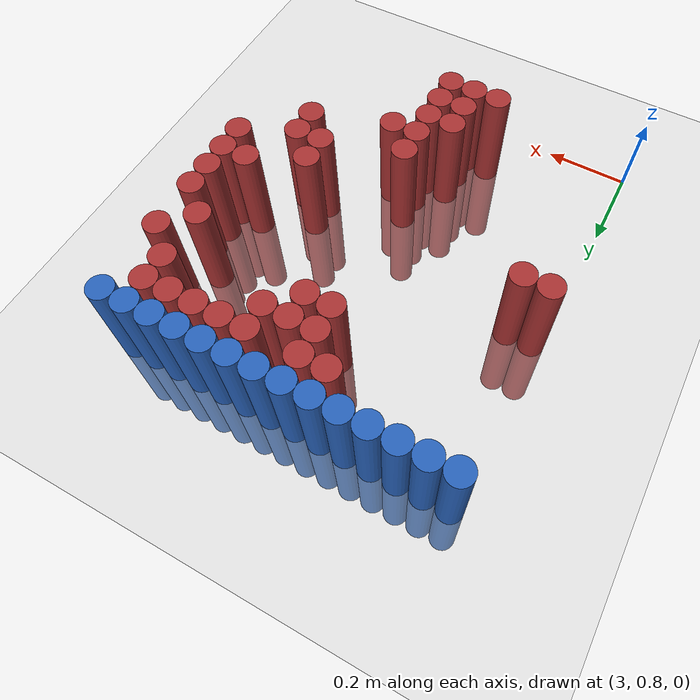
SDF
<sdf version="1.6">
 <world name="default">
  <model name="ground_plane">
   <static>1</static>
   <link name="link">
    <collision name="collision">
     <geometry><plane><normal>0 0 1</normal><size>100 100</size></plane></geometry>
     <surface><friction><ode><mu>100</mu><mu2>50</mu2></ode></friction></surface>
    </collision>
    <visual name="visual">
     <cast_shadows>0</cast_shadows>
     <geometry><plane><normal>0 0 1</normal><size>100 100</size></plane></geometry>
     <material>
      <script><uri>file://media/materials/scripts/gazebo.material</uri><name>Gazebo/Grey</name></script>
     </material>
    </visual>
   </link>
  </model>
  <model name="unit_cylinder_111">
   <static>1</static>
   <pose>3.030000 1.770000 0.000000 0.000000 0.000000 0.000000</pose>
   <link name="link">
    <inertial>
     <mass>1</mass>
     <inertia><ixx>0.145833</ixx><ixy>0</ixy><ixz>0</ixz><iyy>0.145833</iyy><iyz>0</iyz><izz>0.125</izz></inertia>
    </inertial>
    <collision name="collision">
     <geometry><cylinder><radius>0.030000</radius><length>0.5</length></cylinder></geometry>
    </collision>
    <visual name="visual">
     <geometry><cylinder><radius>0.030000</radius><length>0.5</length></cylinder></geometry>
     <material>
      <ambient>0.152000 0.379000 0.720000 1</ambient>
      <diffuse>0.152000 0.379000 0.720000 1</diffuse>
     </material>
     <material>
      <script><name>Gazebo/Grey</name><uri>file://media/materials/scripts/gazebo.material</uri></script>
     </material>
    </visual>
   </link>
  </model>
  <model name="unit_cylinder_112">
   <static>1</static>
   <pose>3.090000 1.770000 0.000000 0.000000 0.000000 0.000000</pose>
   <link name="link">
    <inertial>
     <mass>1</mass>
     <inertia><ixx>0.145833</ixx><ixy>0</ixy><ixz>0</ixz><iyy>0.145833</iyy><iyz>0</iyz><izz>0.125</izz></inertia>
    </inertial>
    <collision name="collision">
     <geometry><cylinder><radius>0.030000</radius><length>0.5</length></cylinder></geometry>
    </collision>
    <visual name="visual">
     <geometry><cylinder><radius>0.030000</radius><length>0.5</length></cylinder></geometry>
     <material>
      <ambient>0.152000 0.379000 0.720000 1</ambient>
      <diffuse>0.152000 0.379000 0.720000 1</diffuse>
     </material>
     <material>
      <script><name>Gazebo/Grey</name><uri>file://media/materials/scripts/gazebo.material</uri></script>
     </material>
    </visual>
   </link>
  </model>
  <model name="unit_cylinder_113">
   <static>1</static>
   <pose>3.150000 1.770000 0.000000 0.000000 0.000000 0.000000</pose>
   <link name="link">
    <inertial>
     <mass>1</mass>
     <inertia><ixx>0.145833</ixx><ixy>0</ixy><ixz>0</ixz><iyy>0.145833</iyy><iyz>0</iyz><izz>0.125</izz></inertia>
    </inertial>
    <collision name="collision">
     <geometry><cylinder><radius>0.030000</radius><length>0.5</length></cylinder></geometry>
    </collision>
    <visual name="visual">
     <geometry><cylinder><radius>0.030000</radius><length>0.5</length></cylinder></geometry>
     <material>
      <ambient>0.152000 0.379000 0.720000 1</ambient>
      <diffuse>0.152000 0.379000 0.720000 1</diffuse>
     </material>
     <material>
      <script><name>Gazebo/Grey</name><uri>file://media/materials/scripts/gazebo.material</uri></script>
     </material>
    </visual>
   </link>
  </model>
  <model name="unit_cylinder_114">
   <static>1</static>
   <pose>3.210000 1.770000 0.000000 0.000000 0.000000 0.000000</pose>
   <link name="link">
    <inertial>
     <mass>1</mass>
     <inertia><ixx>0.145833</ixx><ixy>0</ixy><ixz>0</ixz><iyy>0.145833</iyy><iyz>0</iyz><izz>0.125</izz></inertia>
    </inertial>
    <collision name="collision">
     <geometry><cylinder><radius>0.030000</radius><length>0.5</length></cylinder></geometry>
    </collision>
    <visual name="visual">
     <geometry><cylinder><radius>0.030000</radius><length>0.5</length></cylinder></geometry>
     <material>
      <ambient>0.152000 0.379000 0.720000 1</ambient>
      <diffuse>0.152000 0.379000 0.720000 1</diffuse>
     </material>
     <material>
      <script><name>Gazebo/Grey</name><uri>file://media/materials/scripts/gazebo.material</uri></script>
     </material>
    </visual>
   </link>
  </model>
  <model name="unit_cylinder_115">
   <static>1</static>
   <pose>3.270000 1.770000 0.000000 0.000000 0.000000 0.000000</pose>
   <link name="link">
    <inertial>
     <mass>1</mass>
     <inertia><ixx>0.145833</ixx><ixy>0</ixy><ixz>0</ixz><iyy>0.145833</iyy><iyz>0</iyz><izz>0.125</izz></inertia>
    </inertial>
    <collision name="collision">
     <geometry><cylinder><radius>0.030000</radius><length>0.5</length></cylinder></geometry>
    </collision>
    <visual name="visual">
     <geometry><cylinder><radius>0.030000</radius><length>0.5</length></cylinder></geometry>
     <material>
      <ambient>0.152000 0.379000 0.720000 1</ambient>
      <diffuse>0.152000 0.379000 0.720000 1</diffuse>
     </material>
     <material>
      <script><name>Gazebo/Grey</name><uri>file://media/materials/scripts/gazebo.material</uri></script>
     </material>
    </visual>
   </link>
  </model>
  <model name="unit_cylinder_116">
   <static>1</static>
   <pose>3.330000 1.770000 0.000000 0.000000 0.000000 0.000000</pose>
   <link name="link">
    <inertial>
     <mass>1</mass>
     <inertia><ixx>0.145833</ixx><ixy>0</ixy><ixz>0</ixz><iyy>0.145833</iyy><iyz>0</iyz><izz>0.125</izz></inertia>
    </inertial>
    <collision name="collision">
     <geometry><cylinder><radius>0.030000</radius><length>0.5</length></cylinder></geometry>
    </collision>
    <visual name="visual">
     <geometry><cylinder><radius>0.030000</radius><length>0.5</length></cylinder></geometry>
     <material>
      <ambient>0.152000 0.379000 0.720000 1</ambient>
      <diffuse>0.152000 0.379000 0.720000 1</diffuse>
     </material>
     <material>
      <script><name>Gazebo/Grey</name><uri>file://media/materials/scripts/gazebo.material</uri></script>
     </material>
    </visual>
   </link>
  </model>
  <model name="unit_cylinder_117">
   <static>1</static>
   <pose>3.390000 1.770000 0.000000 0.000000 0.000000 0.000000</pose>
   <link name="link">
    <inertial>
     <mass>1</mass>
     <inertia><ixx>0.145833</ixx><ixy>0</ixy><ixz>0</ixz><iyy>0.145833</iyy><iyz>0</iyz><izz>0.125</izz></inertia>
    </inertial>
    <collision name="collision">
     <geometry><cylinder><radius>0.030000</radius><length>0.5</length></cylinder></geometry>
    </collision>
    <visual name="visual">
     <geometry><cylinder><radius>0.030000</radius><length>0.5</length></cylinder></geometry>
     <material>
      <ambient>0.152000 0.379000 0.720000 1</ambient>
      <diffuse>0.152000 0.379000 0.720000 1</diffuse>
     </material>
     <material>
      <script><name>Gazebo/Grey</name><uri>file://media/materials/scripts/gazebo.material</uri></script>
     </material>
    </visual>
   </link>
  </model>
  <model name="unit_cylinder_118">
   <static>1</static>
   <pose>3.450000 1.770000 0.000000 0.000000 0.000000 0.000000</pose>
   <link name="link">
    <inertial>
     <mass>1</mass>
     <inertia><ixx>0.145833</ixx><ixy>0</ixy><ixz>0</ixz><iyy>0.145833</iyy><iyz>0</iyz><izz>0.125</izz></inertia>
    </inertial>
    <collision name="collision">
     <geometry><cylinder><radius>0.030000</radius><length>0.5</length></cylinder></geometry>
    </collision>
    <visual name="visual">
     <geometry><cylinder><radius>0.030000</radius><length>0.5</length></cylinder></geometry>
     <material>
      <ambient>0.152000 0.379000 0.720000 1</ambient>
      <diffuse>0.152000 0.379000 0.720000 1</diffuse>
     </material>
     <material>
      <script><name>Gazebo/Grey</name><uri>file://media/materials/scripts/gazebo.material</uri></script>
     </material>
    </visual>
   </link>
  </model>
  <model name="unit_cylinder_119">
   <static>1</static>
   <pose>3.510000 1.770000 0.000000 0.000000 0.000000 0.000000</pose>
   <link name="link">
    <inertial>
     <mass>1</mass>
     <inertia><ixx>0.145833</ixx><ixy>0</ixy><ixz>0</ixz><iyy>0.145833</iyy><iyz>0</iyz><izz>0.125</izz></inertia>
    </inertial>
    <collision name="collision">
     <geometry><cylinder><radius>0.030000</radius><length>0.5</length></cylinder></geometry>
    </collision>
    <visual name="visual">
     <geometry><cylinder><radius>0.030000</radius><length>0.5</length></cylinder></geometry>
     <material>
      <ambient>0.152000 0.379000 0.720000 1</ambient>
      <diffuse>0.152000 0.379000 0.720000 1</diffuse>
     </material>
     <material>
      <script><name>Gazebo/Grey</name><uri>file://media/materials/scripts/gazebo.material</uri></script>
     </material>
    </visual>
   </link>
  </model>
  <model name="unit_cylinder_120">
   <static>1</static>
   <pose>3.570000 1.770000 0.000000 0.000000 0.000000 0.000000</pose>
   <link name="link">
    <inertial>
     <mass>1</mass>
     <inertia><ixx>0.145833</ixx><ixy>0</ixy><ixz>0</ixz><iyy>0.145833</iyy><iyz>0</iyz><izz>0.125</izz></inertia>
    </inertial>
    <collision name="collision">
     <geometry><cylinder><radius>0.030000</radius><length>0.5</length></cylinder></geometry>
    </collision>
    <visual name="visual">
     <geometry><cylinder><radius>0.030000</radius><length>0.5</length></cylinder></geometry>
     <material>
      <ambient>0.152000 0.379000 0.720000 1</ambient>
      <diffuse>0.152000 0.379000 0.720000 1</diffuse>
     </material>
     <material>
      <script><name>Gazebo/Grey</name><uri>file://media/materials/scripts/gazebo.material</uri></script>
     </material>
    </visual>
   </link>
  </model>
  <model name="unit_cylinder_121">
   <static>1</static>
   <pose>3.630000 1.770000 0.000000 0.000000 0.000000 0.000000</pose>
   <link name="link">
    <inertial>
     <mass>1</mass>
     <inertia><ixx>0.145833</ixx><ixy>0</ixy><ixz>0</ixz><iyy>0.145833</iyy><iyz>0</iyz><izz>0.125</izz></inertia>
    </inertial>
    <collision name="collision">
     <geometry><cylinder><radius>0.030000</radius><length>0.5</length></cylinder></geometry>
    </collision>
    <visual name="visual">
     <geometry><cylinder><radius>0.030000</radius><length>0.5</length></cylinder></geometry>
     <material>
      <ambient>0.152000 0.379000 0.720000 1</ambient>
      <diffuse>0.152000 0.379000 0.720000 1</diffuse>
     </material>
     <material>
      <script><name>Gazebo/Grey</name><uri>file://media/materials/scripts/gazebo.material</uri></script>
     </material>
    </visual>
   </link>
  </model>
  <model name="unit_cylinder_122">
   <static>1</static>
   <pose>3.690000 1.770000 0.000000 0.000000 0.000000 0.000000</pose>
   <link name="link">
    <inertial>
     <mass>1</mass>
     <inertia><ixx>0.145833</ixx><ixy>0</ixy><ixz>0</ixz><iyy>0.145833</iyy><iyz>0</iyz><izz>0.125</izz></inertia>
    </inertial>
    <collision name="collision">
     <geometry><cylinder><radius>0.030000</radius><length>0.5</length></cylinder></geometry>
    </collision>
    <visual name="visual">
     <geometry><cylinder><radius>0.030000</radius><length>0.5</length></cylinder></geometry>
     <material>
      <ambient>0.152000 0.379000 0.720000 1</ambient>
      <diffuse>0.152000 0.379000 0.720000 1</diffuse>
     </material>
     <material>
      <script><name>Gazebo/Grey</name><uri>file://media/materials/scripts/gazebo.material</uri></script>
     </material>
    </visual>
   </link>
  </model>
  <model name="unit_cylinder_123">
   <static>1</static>
   <pose>3.750000 1.770000 0.000000 0.000000 0.000000 0.000000</pose>
   <link name="link">
    <inertial>
     <mass>1</mass>
     <inertia><ixx>0.145833</ixx><ixy>0</ixy><ixz>0</ixz><iyy>0.145833</iyy><iyz>0</iyz><izz>0.125</izz></inertia>
    </inertial>
    <collision name="collision">
     <geometry><cylinder><radius>0.030000</radius><length>0.5</length></cylinder></geometry>
    </collision>
    <visual name="visual">
     <geometry><cylinder><radius>0.030000</radius><length>0.5</length></cylinder></geometry>
     <material>
      <ambient>0.152000 0.379000 0.720000 1</ambient>
      <diffuse>0.152000 0.379000 0.720000 1</diffuse>
     </material>
     <material>
      <script><name>Gazebo/Grey</name><uri>file://media/materials/scripts/gazebo.material</uri></script>
     </material>
    </visual>
   </link>
  </model>
  <model name="unit_cylinder_124">
   <static>1</static>
   <pose>3.810000 1.770000 0.000000 0.000000 0.000000 0.000000</pose>
   <link name="link">
    <inertial>
     <mass>1</mass>
     <inertia><ixx>0.145833</ixx><ixy>0</ixy><ixz>0</ixz><iyy>0.145833</iyy><iyz>0</iyz><izz>0.125</izz></inertia>
    </inertial>
    <collision name="collision">
     <geometry><cylinder><radius>0.030000</radius><length>0.5</length></cylinder></geometry>
    </collision>
    <visual name="visual">
     <geometry><cylinder><radius>0.030000</radius><length>0.5</length></cylinder></geometry>
     <material>
      <ambient>0.152000 0.379000 0.720000 1</ambient>
      <diffuse>0.152000 0.379000 0.720000 1</diffuse>
     </material>
     <material>
      <script><name>Gazebo/Grey</name><uri>file://media/materials/scripts/gazebo.material</uri></script>
     </material>
    </visual>
   </link>
  </model>
  <model name="unit_cylinder_132">
   <static>1</static>
   <pose>3.330000 1.710000 0.000000 0.000000 0.000000 0.000000</pose>
   <link name="link">
    <inertial>
     <mass>1</mass>
     <inertia><ixx>0.145833</ixx><ixy>0</ixy><ixz>0</ixz><iyy>0.145833</iyy><iyz>0</iyz><izz>0.125</izz></inertia>
    </inertial>
    <collision name="collision">
     <geometry><cylinder><radius>0.030000</radius><length>0.5</length></cylinder></geometry>
    </collision>
    <visual name="visual">
     <geometry><cylinder><radius>0.030000</radius><length>0.5</length></cylinder></geometry>
     <material>
      <ambient>0.648000 0.192000 0.192000 1</ambient>
      <diffuse>0.648000 0.192000 0.192000 1</diffuse>
     </material>
     <material>
      <script><name>Gazebo/Grey</name><uri>file://media/materials/scripts/gazebo.material</uri></script>
     </material>
    </visual>
   </link>
  </model>
  <model name="unit_cylinder_133">
   <static>1</static>
   <pose>3.390000 1.710000 0.000000 0.000000 0.000000 0.000000</pose>
   <link name="link">
    <inertial>
     <mass>1</mass>
     <inertia><ixx>0.145833</ixx><ixy>0</ixy><ixz>0</ixz><iyy>0.145833</iyy><iyz>0</iyz><izz>0.125</izz></inertia>
    </inertial>
    <collision name="collision">
     <geometry><cylinder><radius>0.030000</radius><length>0.5</length></cylinder></geometry>
    </collision>
    <visual name="visual">
     <geometry><cylinder><radius>0.030000</radius><length>0.5</length></cylinder></geometry>
     <material>
      <ambient>0.648000 0.192000 0.192000 1</ambient>
      <diffuse>0.648000 0.192000 0.192000 1</diffuse>
     </material>
     <material>
      <script><name>Gazebo/Grey</name><uri>file://media/materials/scripts/gazebo.material</uri></script>
     </material>
    </visual>
   </link>
  </model>
  <model name="unit_cylinder_134">
   <static>1</static>
   <pose>3.510000 1.710000 0.000000 0.000000 0.000000 0.000000</pose>
   <link name="link">
    <inertial>
     <mass>1</mass>
     <inertia><ixx>0.145833</ixx><ixy>0</ixy><ixz>0</ixz><iyy>0.145833</iyy><iyz>0</iyz><izz>0.125</izz></inertia>
    </inertial>
    <collision name="collision">
     <geometry><cylinder><radius>0.030000</radius><length>0.5</length></cylinder></geometry>
    </collision>
    <visual name="visual">
     <geometry><cylinder><radius>0.030000</radius><length>0.5</length></cylinder></geometry>
     <material>
      <ambient>0.648000 0.192000 0.192000 1</ambient>
      <diffuse>0.648000 0.192000 0.192000 1</diffuse>
     </material>
     <material>
      <script><name>Gazebo/Grey</name><uri>file://media/materials/scripts/gazebo.material</uri></script>
     </material>
    </visual>
   </link>
  </model>
  <model name="unit_cylinder_135">
   <static>1</static>
   <pose>3.570000 1.710000 0.000000 0.000000 0.000000 0.000000</pose>
   <link name="link">
    <inertial>
     <mass>1</mass>
     <inertia><ixx>0.145833</ixx><ixy>0</ixy><ixz>0</ixz><iyy>0.145833</iyy><iyz>0</iyz><izz>0.125</izz></inertia>
    </inertial>
    <collision name="collision">
     <geometry><cylinder><radius>0.030000</radius><length>0.5</length></cylinder></geometry>
    </collision>
    <visual name="visual">
     <geometry><cylinder><radius>0.030000</radius><length>0.5</length></cylinder></geometry>
     <material>
      <ambient>0.648000 0.192000 0.192000 1</ambient>
      <diffuse>0.648000 0.192000 0.192000 1</diffuse>
     </material>
     <material>
      <script><name>Gazebo/Grey</name><uri>file://media/materials/scripts/gazebo.material</uri></script>
     </material>
    </visual>
   </link>
  </model>
  <model name="unit_cylinder_136">
   <static>1</static>
   <pose>3.630000 1.710000 0.000000 0.000000 0.000000 0.000000</pose>
   <link name="link">
    <inertial>
     <mass>1</mass>
     <inertia><ixx>0.145833</ixx><ixy>0</ixy><ixz>0</ixz><iyy>0.145833</iyy><iyz>0</iyz><izz>0.125</izz></inertia>
    </inertial>
    <collision name="collision">
     <geometry><cylinder><radius>0.030000</radius><length>0.5</length></cylinder></geometry>
    </collision>
    <visual name="visual">
     <geometry><cylinder><radius>0.030000</radius><length>0.5</length></cylinder></geometry>
     <material>
      <ambient>0.648000 0.192000 0.192000 1</ambient>
      <diffuse>0.648000 0.192000 0.192000 1</diffuse>
     </material>
     <material>
      <script><name>Gazebo/Grey</name><uri>file://media/materials/scripts/gazebo.material</uri></script>
     </material>
    </visual>
   </link>
  </model>
  <model name="unit_cylinder_137">
   <static>1</static>
   <pose>3.690000 1.710000 0.000000 0.000000 0.000000 0.000000</pose>
   <link name="link">
    <inertial>
     <mass>1</mass>
     <inertia><ixx>0.145833</ixx><ixy>0</ixy><ixz>0</ixz><iyy>0.145833</iyy><iyz>0</iyz><izz>0.125</izz></inertia>
    </inertial>
    <collision name="collision">
     <geometry><cylinder><radius>0.030000</radius><length>0.5</length></cylinder></geometry>
    </collision>
    <visual name="visual">
     <geometry><cylinder><radius>0.030000</radius><length>0.5</length></cylinder></geometry>
     <material>
      <ambient>0.648000 0.192000 0.192000 1</ambient>
      <diffuse>0.648000 0.192000 0.192000 1</diffuse>
     </material>
     <material>
      <script><name>Gazebo/Grey</name><uri>file://media/materials/scripts/gazebo.material</uri></script>
     </material>
    </visual>
   </link>
  </model>
  <model name="unit_cylinder_138">
   <static>1</static>
   <pose>3.750000 1.710000 0.000000 0.000000 0.000000 0.000000</pose>
   <link name="link">
    <inertial>
     <mass>1</mass>
     <inertia><ixx>0.145833</ixx><ixy>0</ixy><ixz>0</ixz><iyy>0.145833</iyy><iyz>0</iyz><izz>0.125</izz></inertia>
    </inertial>
    <collision name="collision">
     <geometry><cylinder><radius>0.030000</radius><length>0.5</length></cylinder></geometry>
    </collision>
    <visual name="visual">
     <geometry><cylinder><radius>0.030000</radius><length>0.5</length></cylinder></geometry>
     <material>
      <ambient>0.648000 0.192000 0.192000 1</ambient>
      <diffuse>0.648000 0.192000 0.192000 1</diffuse>
     </material>
     <material>
      <script><name>Gazebo/Grey</name><uri>file://media/materials/scripts/gazebo.material</uri></script>
     </material>
    </visual>
   </link>
  </model>
  <model name="unit_cylinder_146">
   <static>1</static>
   <pose>3.390000 1.650000 0.000000 0.000000 0.000000 0.000000</pose>
   <link name="link">
    <inertial>
     <mass>1</mass>
     <inertia><ixx>0.145833</ixx><ixy>0</ixy><ixz>0</ixz><iyy>0.145833</iyy><iyz>0</iyz><izz>0.125</izz></inertia>
    </inertial>
    <collision name="collision">
     <geometry><cylinder><radius>0.030000</radius><length>0.5</length></cylinder></geometry>
    </collision>
    <visual name="visual">
     <geometry><cylinder><radius>0.030000</radius><length>0.5</length></cylinder></geometry>
     <material>
      <ambient>0.648000 0.192000 0.192000 1</ambient>
      <diffuse>0.648000 0.192000 0.192000 1</diffuse>
     </material>
     <material>
      <script><name>Gazebo/Grey</name><uri>file://media/materials/scripts/gazebo.material</uri></script>
     </material>
    </visual>
   </link>
  </model>
  <model name="unit_cylinder_147">
   <static>1</static>
   <pose>3.450000 1.650000 0.000000 0.000000 0.000000 0.000000</pose>
   <link name="link">
    <inertial>
     <mass>1</mass>
     <inertia><ixx>0.145833</ixx><ixy>0</ixy><ixz>0</ixz><iyy>0.145833</iyy><iyz>0</iyz><izz>0.125</izz></inertia>
    </inertial>
    <collision name="collision">
     <geometry><cylinder><radius>0.030000</radius><length>0.5</length></cylinder></geometry>
    </collision>
    <visual name="visual">
     <geometry><cylinder><radius>0.030000</radius><length>0.5</length></cylinder></geometry>
     <material>
      <ambient>0.648000 0.192000 0.192000 1</ambient>
      <diffuse>0.648000 0.192000 0.192000 1</diffuse>
     </material>
     <material>
      <script><name>Gazebo/Grey</name><uri>file://media/materials/scripts/gazebo.material</uri></script>
     </material>
    </visual>
   </link>
  </model>
  <model name="unit_cylinder_148">
   <static>1</static>
   <pose>3.510000 1.650000 0.000000 0.000000 0.000000 0.000000</pose>
   <link name="link">
    <inertial>
     <mass>1</mass>
     <inertia><ixx>0.145833</ixx><ixy>0</ixy><ixz>0</ixz><iyy>0.145833</iyy><iyz>0</iyz><izz>0.125</izz></inertia>
    </inertial>
    <collision name="collision">
     <geometry><cylinder><radius>0.030000</radius><length>0.5</length></cylinder></geometry>
    </collision>
    <visual name="visual">
     <geometry><cylinder><radius>0.030000</radius><length>0.5</length></cylinder></geometry>
     <material>
      <ambient>0.648000 0.192000 0.192000 1</ambient>
      <diffuse>0.648000 0.192000 0.192000 1</diffuse>
     </material>
     <material>
      <script><name>Gazebo/Grey</name><uri>file://media/materials/scripts/gazebo.material</uri></script>
     </material>
    </visual>
   </link>
  </model>
  <model name="unit_cylinder_149">
   <static>1</static>
   <pose>3.750000 1.650000 0.000000 0.000000 0.000000 0.000000</pose>
   <link name="link">
    <inertial>
     <mass>1</mass>
     <inertia><ixx>0.145833</ixx><ixy>0</ixy><ixz>0</ixz><iyy>0.145833</iyy><iyz>0</iyz><izz>0.125</izz></inertia>
    </inertial>
    <collision name="collision">
     <geometry><cylinder><radius>0.030000</radius><length>0.5</length></cylinder></geometry>
    </collision>
    <visual name="visual">
     <geometry><cylinder><radius>0.030000</radius><length>0.5</length></cylinder></geometry>
     <material>
      <ambient>0.648000 0.192000 0.192000 1</ambient>
      <diffuse>0.648000 0.192000 0.192000 1</diffuse>
     </material>
     <material>
      <script><name>Gazebo/Grey</name><uri>file://media/materials/scripts/gazebo.material</uri></script>
     </material>
    </visual>
   </link>
  </model>
  <model name="unit_cylinder_155">
   <static>1</static>
   <pose>3.390000 1.590000 0.000000 0.000000 0.000000 0.000000</pose>
   <link name="link">
    <inertial>
     <mass>1</mass>
     <inertia><ixx>0.145833</ixx><ixy>0</ixy><ixz>0</ixz><iyy>0.145833</iyy><iyz>0</iyz><izz>0.125</izz></inertia>
    </inertial>
    <collision name="collision">
     <geometry><cylinder><radius>0.030000</radius><length>0.5</length></cylinder></geometry>
    </collision>
    <visual name="visual">
     <geometry><cylinder><radius>0.030000</radius><length>0.5</length></cylinder></geometry>
     <material>
      <ambient>0.648000 0.192000 0.192000 1</ambient>
      <diffuse>0.648000 0.192000 0.192000 1</diffuse>
     </material>
     <material>
      <script><name>Gazebo/Grey</name><uri>file://media/materials/scripts/gazebo.material</uri></script>
     </material>
    </visual>
   </link>
  </model>
  <model name="unit_cylinder_156">
   <static>1</static>
   <pose>3.450000 1.590000 0.000000 0.000000 0.000000 0.000000</pose>
   <link name="link">
    <inertial>
     <mass>1</mass>
     <inertia><ixx>0.145833</ixx><ixy>0</ixy><ixz>0</ixz><iyy>0.145833</iyy><iyz>0</iyz><izz>0.125</izz></inertia>
    </inertial>
    <collision name="collision">
     <geometry><cylinder><radius>0.030000</radius><length>0.5</length></cylinder></geometry>
    </collision>
    <visual name="visual">
     <geometry><cylinder><radius>0.030000</radius><length>0.5</length></cylinder></geometry>
     <material>
      <ambient>0.648000 0.192000 0.192000 1</ambient>
      <diffuse>0.648000 0.192000 0.192000 1</diffuse>
     </material>
     <material>
      <script><name>Gazebo/Grey</name><uri>file://media/materials/scripts/gazebo.material</uri></script>
     </material>
    </visual>
   </link>
  </model>
  <model name="unit_cylinder_157">
   <static>1</static>
   <pose>3.810000 1.590000 0.000000 0.000000 0.000000 0.000000</pose>
   <link name="link">
    <inertial>
     <mass>1</mass>
     <inertia><ixx>0.145833</ixx><ixy>0</ixy><ixz>0</ixz><iyy>0.145833</iyy><iyz>0</iyz><izz>0.125</izz></inertia>
    </inertial>
    <collision name="collision">
     <geometry><cylinder><radius>0.030000</radius><length>0.5</length></cylinder></geometry>
    </collision>
    <visual name="visual">
     <geometry><cylinder><radius>0.030000</radius><length>0.5</length></cylinder></geometry>
     <material>
      <ambient>0.648000 0.192000 0.192000 1</ambient>
      <diffuse>0.648000 0.192000 0.192000 1</diffuse>
     </material>
     <material>
      <script><name>Gazebo/Grey</name><uri>file://media/materials/scripts/gazebo.material</uri></script>
     </material>
    </visual>
   </link>
  </model>
  <model name="unit_cylinder_161">
   <static>1</static>
   <pose>3.750000 1.530000 0.000000 0.000000 0.000000 0.000000</pose>
   <link name="link">
    <inertial>
     <mass>1</mass>
     <inertia><ixx>0.145833</ixx><ixy>0</ixy><ixz>0</ixz><iyy>0.145833</iyy><iyz>0</iyz><izz>0.125</izz></inertia>
    </inertial>
    <collision name="collision">
     <geometry><cylinder><radius>0.030000</radius><length>0.5</length></cylinder></geometry>
    </collision>
    <visual name="visual">
     <geometry><cylinder><radius>0.030000</radius><length>0.5</length></cylinder></geometry>
     <material>
      <ambient>0.648000 0.192000 0.192000 1</ambient>
      <diffuse>0.648000 0.192000 0.192000 1</diffuse>
     </material>
     <material>
      <script><name>Gazebo/Grey</name><uri>file://media/materials/scripts/gazebo.material</uri></script>
     </material>
    </visual>
   </link>
  </model>
  <model name="unit_cylinder_163">
   <static>1</static>
   <pose>3.810000 1.470000 0.000000 0.000000 0.000000 0.000000</pose>
   <link name="link">
    <inertial>
     <mass>1</mass>
     <inertia><ixx>0.145833</ixx><ixy>0</ixy><ixz>0</ixz><iyy>0.145833</iyy><iyz>0</iyz><izz>0.125</izz></inertia>
    </inertial>
    <collision name="collision">
     <geometry><cylinder><radius>0.030000</radius><length>0.5</length></cylinder></geometry>
    </collision>
    <visual name="visual">
     <geometry><cylinder><radius>0.030000</radius><length>0.5</length></cylinder></geometry>
     <material>
      <ambient>0.648000 0.192000 0.192000 1</ambient>
      <diffuse>0.648000 0.192000 0.192000 1</diffuse>
     </material>
     <material>
      <script><name>Gazebo/Grey</name><uri>file://media/materials/scripts/gazebo.material</uri></script>
     </material>
    </visual>
   </link>
  </model>
  <model name="unit_cylinder_168">
   <static>1</static>
   <pose>3.810000 1.410000 0.000000 0.000000 0.000000 0.000000</pose>
   <link name="link">
    <inertial>
     <mass>1</mass>
     <inertia><ixx>0.145833</ixx><ixy>0</ixy><ixz>0</ixz><iyy>0.145833</iyy><iyz>0</iyz><izz>0.125</izz></inertia>
    </inertial>
    <collision name="collision">
     <geometry><cylinder><radius>0.030000</radius><length>0.5</length></cylinder></geometry>
    </collision>
    <visual name="visual">
     <geometry><cylinder><radius>0.030000</radius><length>0.5</length></cylinder></geometry>
     <material>
      <ambient>0.648000 0.192000 0.192000 1</ambient>
      <diffuse>0.648000 0.192000 0.192000 1</diffuse>
     </material>
     <material>
      <script><name>Gazebo/Grey</name><uri>file://media/materials/scripts/gazebo.material</uri></script>
     </material>
    </visual>
   </link>
  </model>
  <model name="unit_cylinder_172">
   <static>1</static>
   <pose>3.030000 1.350000 0.000000 0.000000 0.000000 0.000000</pose>
   <link name="link">
    <inertial>
     <mass>1</mass>
     <inertia><ixx>0.145833</ixx><ixy>0</ixy><ixz>0</ixz><iyy>0.145833</iyy><iyz>0</iyz><izz>0.125</izz></inertia>
    </inertial>
    <collision name="collision">
     <geometry><cylinder><radius>0.030000</radius><length>0.5</length></cylinder></geometry>
    </collision>
    <visual name="visual">
     <geometry><cylinder><radius>0.030000</radius><length>0.5</length></cylinder></geometry>
     <material>
      <ambient>0.648000 0.192000 0.192000 1</ambient>
      <diffuse>0.648000 0.192000 0.192000 1</diffuse>
     </material>
     <material>
      <script><name>Gazebo/Grey</name><uri>file://media/materials/scripts/gazebo.material</uri></script>
     </material>
    </visual>
   </link>
  </model>
  <model name="unit_cylinder_173">
   <static>1</static>
   <pose>3.090000 1.350000 0.000000 0.000000 0.000000 0.000000</pose>
   <link name="link">
    <inertial>
     <mass>1</mass>
     <inertia><ixx>0.145833</ixx><ixy>0</ixy><ixz>0</ixz><iyy>0.145833</iyy><iyz>0</iyz><izz>0.125</izz></inertia>
    </inertial>
    <collision name="collision">
     <geometry><cylinder><radius>0.030000</radius><length>0.5</length></cylinder></geometry>
    </collision>
    <visual name="visual">
     <geometry><cylinder><radius>0.030000</radius><length>0.5</length></cylinder></geometry>
     <material>
      <ambient>0.648000 0.192000 0.192000 1</ambient>
      <diffuse>0.648000 0.192000 0.192000 1</diffuse>
     </material>
     <material>
      <script><name>Gazebo/Grey</name><uri>file://media/materials/scripts/gazebo.material</uri></script>
     </material>
    </visual>
   </link>
  </model>
  <model name="unit_cylinder_174">
   <static>1</static>
   <pose>3.750000 1.350000 0.000000 0.000000 0.000000 0.000000</pose>
   <link name="link">
    <inertial>
     <mass>1</mass>
     <inertia><ixx>0.145833</ixx><ixy>0</ixy><ixz>0</ixz><iyy>0.145833</iyy><iyz>0</iyz><izz>0.125</izz></inertia>
    </inertial>
    <collision name="collision">
     <geometry><cylinder><radius>0.030000</radius><length>0.5</length></cylinder></geometry>
    </collision>
    <visual name="visual">
     <geometry><cylinder><radius>0.030000</radius><length>0.5</length></cylinder></geometry>
     <material>
      <ambient>0.648000 0.192000 0.192000 1</ambient>
      <diffuse>0.648000 0.192000 0.192000 1</diffuse>
     </material>
     <material>
      <script><name>Gazebo/Grey</name><uri>file://media/materials/scripts/gazebo.material</uri></script>
     </material>
    </visual>
   </link>
  </model>
  <model name="unit_cylinder_175">
   <static>1</static>
   <pose>3.810000 1.350000 0.000000 0.000000 0.000000 0.000000</pose>
   <link name="link">
    <inertial>
     <mass>1</mass>
     <inertia><ixx>0.145833</ixx><ixy>0</ixy><ixz>0</ixz><iyy>0.145833</iyy><iyz>0</iyz><izz>0.125</izz></inertia>
    </inertial>
    <collision name="collision">
     <geometry><cylinder><radius>0.030000</radius><length>0.5</length></cylinder></geometry>
    </collision>
    <visual name="visual">
     <geometry><cylinder><radius>0.030000</radius><length>0.5</length></cylinder></geometry>
     <material>
      <ambient>0.648000 0.192000 0.192000 1</ambient>
      <diffuse>0.648000 0.192000 0.192000 1</diffuse>
     </material>
     <material>
      <script><name>Gazebo/Grey</name><uri>file://media/materials/scripts/gazebo.material</uri></script>
     </material>
    </visual>
   </link>
  </model>
  <model name="unit_cylinder_180">
   <static>1</static>
   <pose>3.630000 1.290000 0.000000 0.000000 0.000000 0.000000</pose>
   <link name="link">
    <inertial>
     <mass>1</mass>
     <inertia><ixx>0.145833</ixx><ixy>0</ixy><ixz>0</ixz><iyy>0.145833</iyy><iyz>0</iyz><izz>0.125</izz></inertia>
    </inertial>
    <collision name="collision">
     <geometry><cylinder><radius>0.030000</radius><length>0.5</length></cylinder></geometry>
    </collision>
    <visual name="visual">
     <geometry><cylinder><radius>0.030000</radius><length>0.5</length></cylinder></geometry>
     <material>
      <ambient>0.648000 0.192000 0.192000 1</ambient>
      <diffuse>0.648000 0.192000 0.192000 1</diffuse>
     </material>
     <material>
      <script><name>Gazebo/Grey</name><uri>file://media/materials/scripts/gazebo.material</uri></script>
     </material>
    </visual>
   </link>
  </model>
  <model name="unit_cylinder_181">
   <static>1</static>
   <pose>3.810000 1.290000 0.000000 0.000000 0.000000 0.000000</pose>
   <link name="link">
    <inertial>
     <mass>1</mass>
     <inertia><ixx>0.145833</ixx><ixy>0</ixy><ixz>0</ixz><iyy>0.145833</iyy><iyz>0</iyz><izz>0.125</izz></inertia>
    </inertial>
    <collision name="collision">
     <geometry><cylinder><radius>0.030000</radius><length>0.5</length></cylinder></geometry>
    </collision>
    <visual name="visual">
     <geometry><cylinder><radius>0.030000</radius><length>0.5</length></cylinder></geometry>
     <material>
      <ambient>0.648000 0.192000 0.192000 1</ambient>
      <diffuse>0.648000 0.192000 0.192000 1</diffuse>
     </material>
     <material>
      <script><name>Gazebo/Grey</name><uri>file://media/materials/scripts/gazebo.material</uri></script>
     </material>
    </visual>
   </link>
  </model>
  <model name="unit_cylinder_188">
   <static>1</static>
   <pose>3.630000 1.230000 0.000000 0.000000 0.000000 0.000000</pose>
   <link name="link">
    <inertial>
     <mass>1</mass>
     <inertia><ixx>0.145833</ixx><ixy>0</ixy><ixz>0</ixz><iyy>0.145833</iyy><iyz>0</iyz><izz>0.125</izz></inertia>
    </inertial>
    <collision name="collision">
     <geometry><cylinder><radius>0.030000</radius><length>0.5</length></cylinder></geometry>
    </collision>
    <visual name="visual">
     <geometry><cylinder><radius>0.030000</radius><length>0.5</length></cylinder></geometry>
     <material>
      <ambient>0.648000 0.192000 0.192000 1</ambient>
      <diffuse>0.648000 0.192000 0.192000 1</diffuse>
     </material>
     <material>
      <script><name>Gazebo/Grey</name><uri>file://media/materials/scripts/gazebo.material</uri></script>
     </material>
    </visual>
   </link>
  </model>
  <model name="unit_cylinder_189">
   <static>1</static>
   <pose>3.690000 1.230000 0.000000 0.000000 0.000000 0.000000</pose>
   <link name="link">
    <inertial>
     <mass>1</mass>
     <inertia><ixx>0.145833</ixx><ixy>0</ixy><ixz>0</ixz><iyy>0.145833</iyy><iyz>0</iyz><izz>0.125</izz></inertia>
    </inertial>
    <collision name="collision">
     <geometry><cylinder><radius>0.030000</radius><length>0.5</length></cylinder></geometry>
    </collision>
    <visual name="visual">
     <geometry><cylinder><radius>0.030000</radius><length>0.5</length></cylinder></geometry>
     <material>
      <ambient>0.648000 0.192000 0.192000 1</ambient>
      <diffuse>0.648000 0.192000 0.192000 1</diffuse>
     </material>
     <material>
      <script><name>Gazebo/Grey</name><uri>file://media/materials/scripts/gazebo.material</uri></script>
     </material>
    </visual>
   </link>
  </model>
  <model name="unit_cylinder_199">
   <static>1</static>
   <pose>3.450000 1.170000 0.000000 0.000000 0.000000 0.000000</pose>
   <link name="link">
    <inertial>
     <mass>1</mass>
     <inertia><ixx>0.145833</ixx><ixy>0</ixy><ixz>0</ixz><iyy>0.145833</iyy><iyz>0</iyz><izz>0.125</izz></inertia>
    </inertial>
    <collision name="collision">
     <geometry><cylinder><radius>0.030000</radius><length>0.5</length></cylinder></geometry>
    </collision>
    <visual name="visual">
     <geometry><cylinder><radius>0.030000</radius><length>0.5</length></cylinder></geometry>
     <material>
      <ambient>0.648000 0.192000 0.192000 1</ambient>
      <diffuse>0.648000 0.192000 0.192000 1</diffuse>
     </material>
     <material>
      <script><name>Gazebo/Grey</name><uri>file://media/materials/scripts/gazebo.material</uri></script>
     </material>
    </visual>
   </link>
  </model>
  <model name="unit_cylinder_200">
   <static>1</static>
   <pose>3.690000 1.170000 0.000000 0.000000 0.000000 0.000000</pose>
   <link name="link">
    <inertial>
     <mass>1</mass>
     <inertia><ixx>0.145833</ixx><ixy>0</ixy><ixz>0</ixz><iyy>0.145833</iyy><iyz>0</iyz><izz>0.125</izz></inertia>
    </inertial>
    <collision name="collision">
     <geometry><cylinder><radius>0.030000</radius><length>0.5</length></cylinder></geometry>
    </collision>
    <visual name="visual">
     <geometry><cylinder><radius>0.030000</radius><length>0.5</length></cylinder></geometry>
     <material>
      <ambient>0.648000 0.192000 0.192000 1</ambient>
      <diffuse>0.648000 0.192000 0.192000 1</diffuse>
     </material>
     <material>
      <script><name>Gazebo/Grey</name><uri>file://media/materials/scripts/gazebo.material</uri></script>
     </material>
    </visual>
   </link>
  </model>
  <model name="unit_cylinder_207">
   <static>1</static>
   <pose>3.450000 1.110000 0.000000 0.000000 0.000000 0.000000</pose>
   <link name="link">
    <inertial>
     <mass>1</mass>
     <inertia><ixx>0.145833</ixx><ixy>0</ixy><ixz>0</ixz><iyy>0.145833</iyy><iyz>0</iyz><izz>0.125</izz></inertia>
    </inertial>
    <collision name="collision">
     <geometry><cylinder><radius>0.030000</radius><length>0.5</length></cylinder></geometry>
    </collision>
    <visual name="visual">
     <geometry><cylinder><radius>0.030000</radius><length>0.5</length></cylinder></geometry>
     <material>
      <ambient>0.648000 0.192000 0.192000 1</ambient>
      <diffuse>0.648000 0.192000 0.192000 1</diffuse>
     </material>
     <material>
      <script><name>Gazebo/Grey</name><uri>file://media/materials/scripts/gazebo.material</uri></script>
     </material>
    </visual>
   </link>
  </model>
  <model name="unit_cylinder_208">
   <static>1</static>
   <pose>3.510000 1.110000 0.000000 0.000000 0.000000 0.000000</pose>
   <link name="link">
    <inertial>
     <mass>1</mass>
     <inertia><ixx>0.145833</ixx><ixy>0</ixy><ixz>0</ixz><iyy>0.145833</iyy><iyz>0</iyz><izz>0.125</izz></inertia>
    </inertial>
    <collision name="collision">
     <geometry><cylinder><radius>0.030000</radius><length>0.5</length></cylinder></geometry>
    </collision>
    <visual name="visual">
     <geometry><cylinder><radius>0.030000</radius><length>0.5</length></cylinder></geometry>
     <material>
      <ambient>0.648000 0.192000 0.192000 1</ambient>
      <diffuse>0.648000 0.192000 0.192000 1</diffuse>
     </material>
     <material>
      <script><name>Gazebo/Grey</name><uri>file://media/materials/scripts/gazebo.material</uri></script>
     </material>
    </visual>
   </link>
  </model>
  <model name="unit_cylinder_214">
   <static>1</static>
   <pose>3.390000 1.050000 0.000000 0.000000 0.000000 0.000000</pose>
   <link name="link">
    <inertial>
     <mass>1</mass>
     <inertia><ixx>0.145833</ixx><ixy>0</ixy><ixz>0</ixz><iyy>0.145833</iyy><iyz>0</iyz><izz>0.125</izz></inertia>
    </inertial>
    <collision name="collision">
     <geometry><cylinder><radius>0.030000</radius><length>0.5</length></cylinder></geometry>
    </collision>
    <visual name="visual">
     <geometry><cylinder><radius>0.030000</radius><length>0.5</length></cylinder></geometry>
     <material>
      <ambient>0.648000 0.192000 0.192000 1</ambient>
      <diffuse>0.648000 0.192000 0.192000 1</diffuse>
     </material>
     <material>
      <script><name>Gazebo/Grey</name><uri>file://media/materials/scripts/gazebo.material</uri></script>
     </material>
    </visual>
   </link>
  </model>
  <model name="unit_cylinder_215">
   <static>1</static>
   <pose>3.450000 1.050000 0.000000 0.000000 0.000000 0.000000</pose>
   <link name="link">
    <inertial>
     <mass>1</mass>
     <inertia><ixx>0.145833</ixx><ixy>0</ixy><ixz>0</ixz><iyy>0.145833</iyy><iyz>0</iyz><izz>0.125</izz></inertia>
    </inertial>
    <collision name="collision">
     <geometry><cylinder><radius>0.030000</radius><length>0.5</length></cylinder></geometry>
    </collision>
    <visual name="visual">
     <geometry><cylinder><radius>0.030000</radius><length>0.5</length></cylinder></geometry>
     <material>
      <ambient>0.648000 0.192000 0.192000 1</ambient>
      <diffuse>0.648000 0.192000 0.192000 1</diffuse>
     </material>
     <material>
      <script><name>Gazebo/Grey</name><uri>file://media/materials/scripts/gazebo.material</uri></script>
     </material>
    </visual>
   </link>
  </model>
  <model name="unit_cylinder_220">
   <static>1</static>
   <pose>3.390000 0.990000 0.000000 0.000000 0.000000 0.000000</pose>
   <link name="link">
    <inertial>
     <mass>1</mass>
     <inertia><ixx>0.145833</ixx><ixy>0</ixy><ixz>0</ixz><iyy>0.145833</iyy><iyz>0</iyz><izz>0.125</izz></inertia>
    </inertial>
    <collision name="collision">
     <geometry><cylinder><radius>0.030000</radius><length>0.5</length></cylinder></geometry>
    </collision>
    <visual name="visual">
     <geometry><cylinder><radius>0.030000</radius><length>0.5</length></cylinder></geometry>
     <material>
      <ambient>0.648000 0.192000 0.192000 1</ambient>
      <diffuse>0.648000 0.192000 0.192000 1</diffuse>
     </material>
     <material>
      <script><name>Gazebo/Grey</name><uri>file://media/materials/scripts/gazebo.material</uri></script>
     </material>
    </visual>
   </link>
  </model>
  <model name="unit_cylinder_221">
   <static>1</static>
   <pose>3.450000 0.990000 0.000000 0.000000 0.000000 0.000000</pose>
   <link name="link">
    <inertial>
     <mass>1</mass>
     <inertia><ixx>0.145833</ixx><ixy>0</ixy><ixz>0</ixz><iyy>0.145833</iyy><iyz>0</iyz><izz>0.125</izz></inertia>
    </inertial>
    <collision name="collision">
     <geometry><cylinder><radius>0.030000</radius><length>0.5</length></cylinder></geometry>
    </collision>
    <visual name="visual">
     <geometry><cylinder><radius>0.030000</radius><length>0.5</length></cylinder></geometry>
     <material>
      <ambient>0.648000 0.192000 0.192000 1</ambient>
      <diffuse>0.648000 0.192000 0.192000 1</diffuse>
     </material>
     <material>
      <script><name>Gazebo/Grey</name><uri>file://media/materials/scripts/gazebo.material</uri></script>
     </material>
    </visual>
   </link>
  </model>
  <model name="unit_cylinder_225">
   <static>1</static>
   <pose>3.330000 0.930000 0.000000 0.000000 0.000000 0.000000</pose>
   <link name="link">
    <inertial>
     <mass>1</mass>
     <inertia><ixx>0.145833</ixx><ixy>0</ixy><ixz>0</ixz><iyy>0.145833</iyy><iyz>0</iyz><izz>0.125</izz></inertia>
    </inertial>
    <collision name="collision">
     <geometry><cylinder><radius>0.030000</radius><length>0.5</length></cylinder></geometry>
    </collision>
    <visual name="visual">
     <geometry><cylinder><radius>0.030000</radius><length>0.5</length></cylinder></geometry>
     <material>
      <ambient>0.648000 0.192000 0.192000 1</ambient>
      <diffuse>0.648000 0.192000 0.192000 1</diffuse>
     </material>
     <material>
      <script><name>Gazebo/Grey</name><uri>file://media/materials/scripts/gazebo.material</uri></script>
     </material>
    </visual>
   </link>
  </model>
  <model name="unit_cylinder_226">
   <static>1</static>
   <pose>3.390000 0.930000 0.000000 0.000000 0.000000 0.000000</pose>
   <link name="link">
    <inertial>
     <mass>1</mass>
     <inertia><ixx>0.145833</ixx><ixy>0</ixy><ixz>0</ixz><iyy>0.145833</iyy><iyz>0</iyz><izz>0.125</izz></inertia>
    </inertial>
    <collision name="collision">
     <geometry><cylinder><radius>0.030000</radius><length>0.5</length></cylinder></geometry>
    </collision>
    <visual name="visual">
     <geometry><cylinder><radius>0.030000</radius><length>0.5</length></cylinder></geometry>
     <material>
      <ambient>0.648000 0.192000 0.192000 1</ambient>
      <diffuse>0.648000 0.192000 0.192000 1</diffuse>
     </material>
     <material>
      <script><name>Gazebo/Grey</name><uri>file://media/materials/scripts/gazebo.material</uri></script>
     </material>
    </visual>
   </link>
  </model>
  <model name="unit_cylinder_227">
   <static>1</static>
   <pose>3.450000 0.930000 0.000000 0.000000 0.000000 0.000000</pose>
   <link name="link">
    <inertial>
     <mass>1</mass>
     <inertia><ixx>0.145833</ixx><ixy>0</ixy><ixz>0</ixz><iyy>0.145833</iyy><iyz>0</iyz><izz>0.125</izz></inertia>
    </inertial>
    <collision name="collision">
     <geometry><cylinder><radius>0.030000</radius><length>0.5</length></cylinder></geometry>
    </collision>
    <visual name="visual">
     <geometry><cylinder><radius>0.030000</radius><length>0.5</length></cylinder></geometry>
     <material>
      <ambient>0.648000 0.192000 0.192000 1</ambient>
      <diffuse>0.648000 0.192000 0.192000 1</diffuse>
     </material>
     <material>
      <script><name>Gazebo/Grey</name><uri>file://media/materials/scripts/gazebo.material</uri></script>
     </material>
    </visual>
   </link>
  </model>
 </world>
</sdf>
